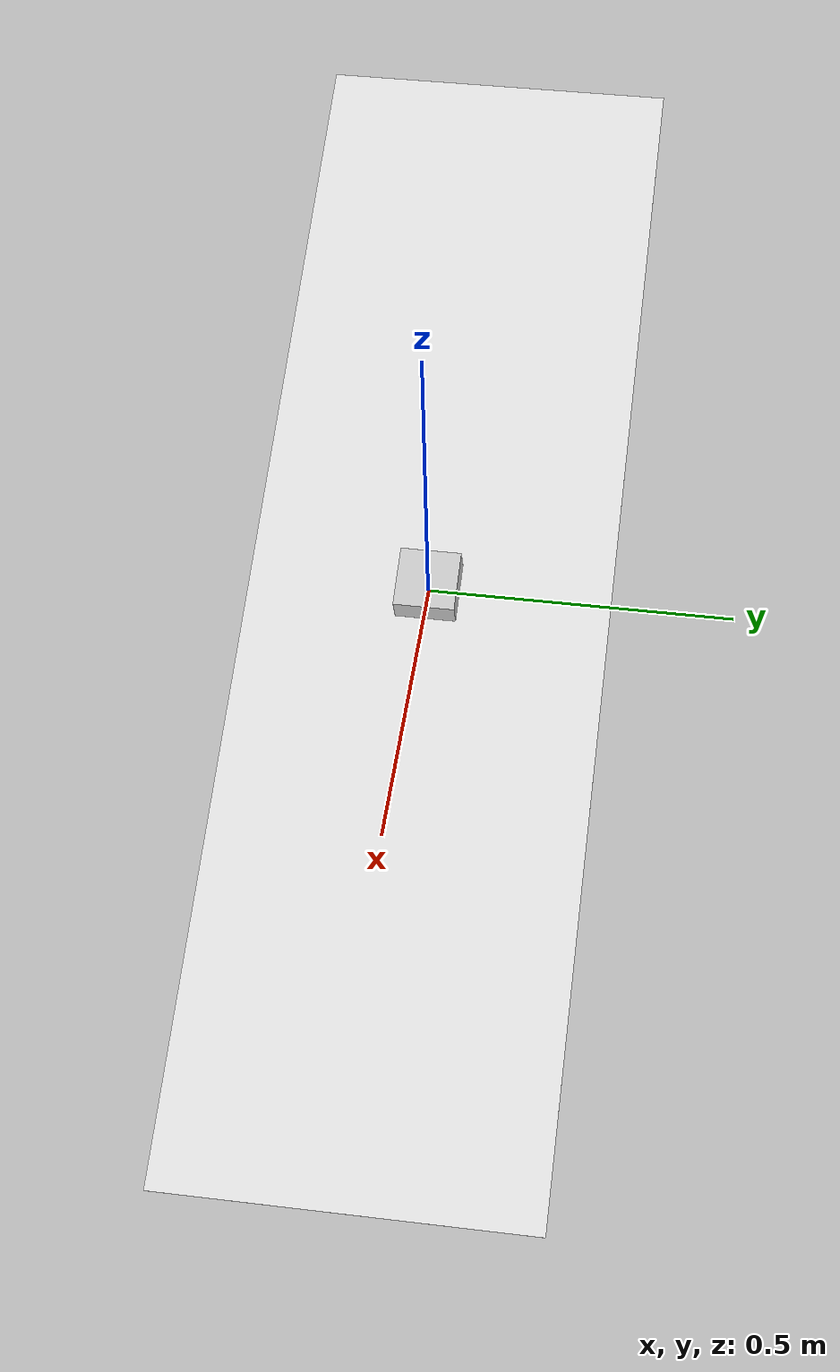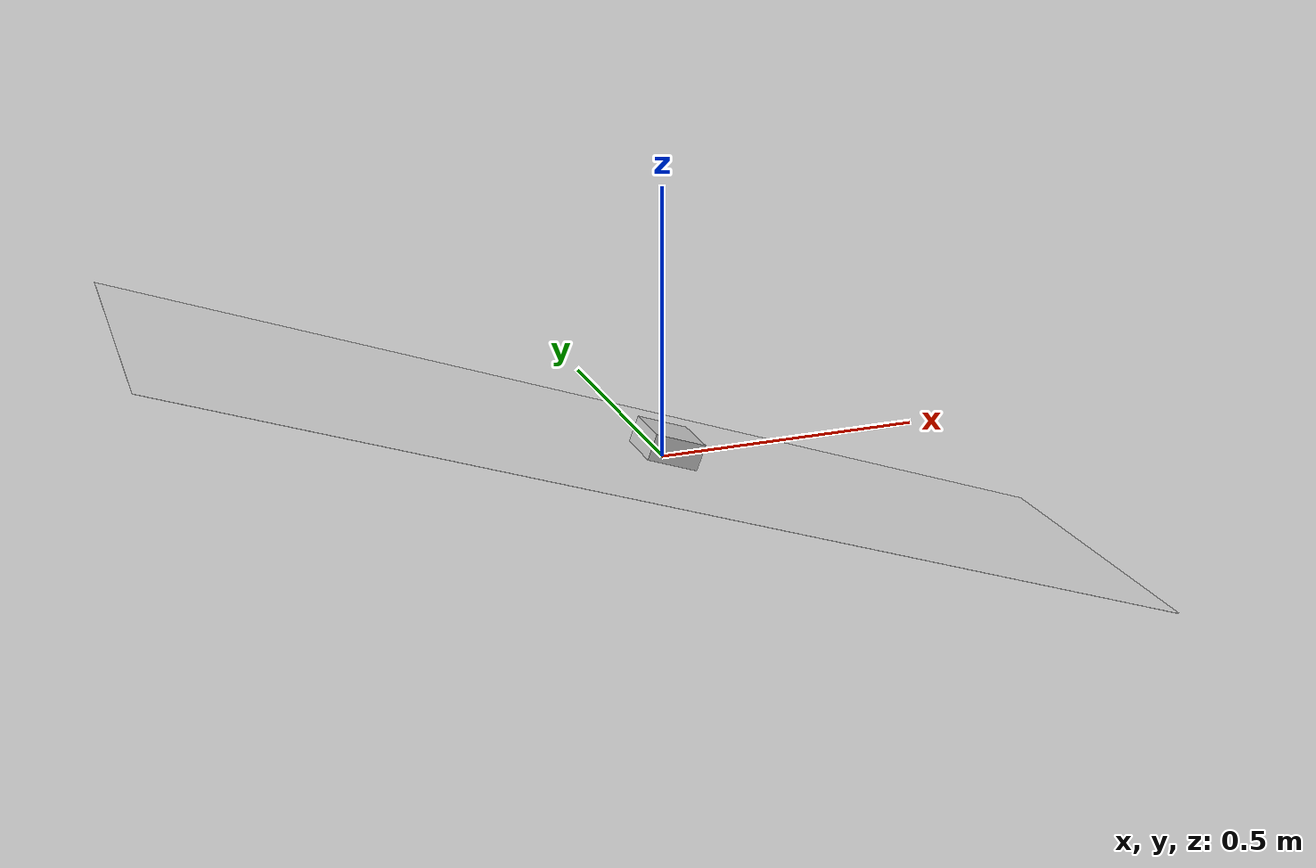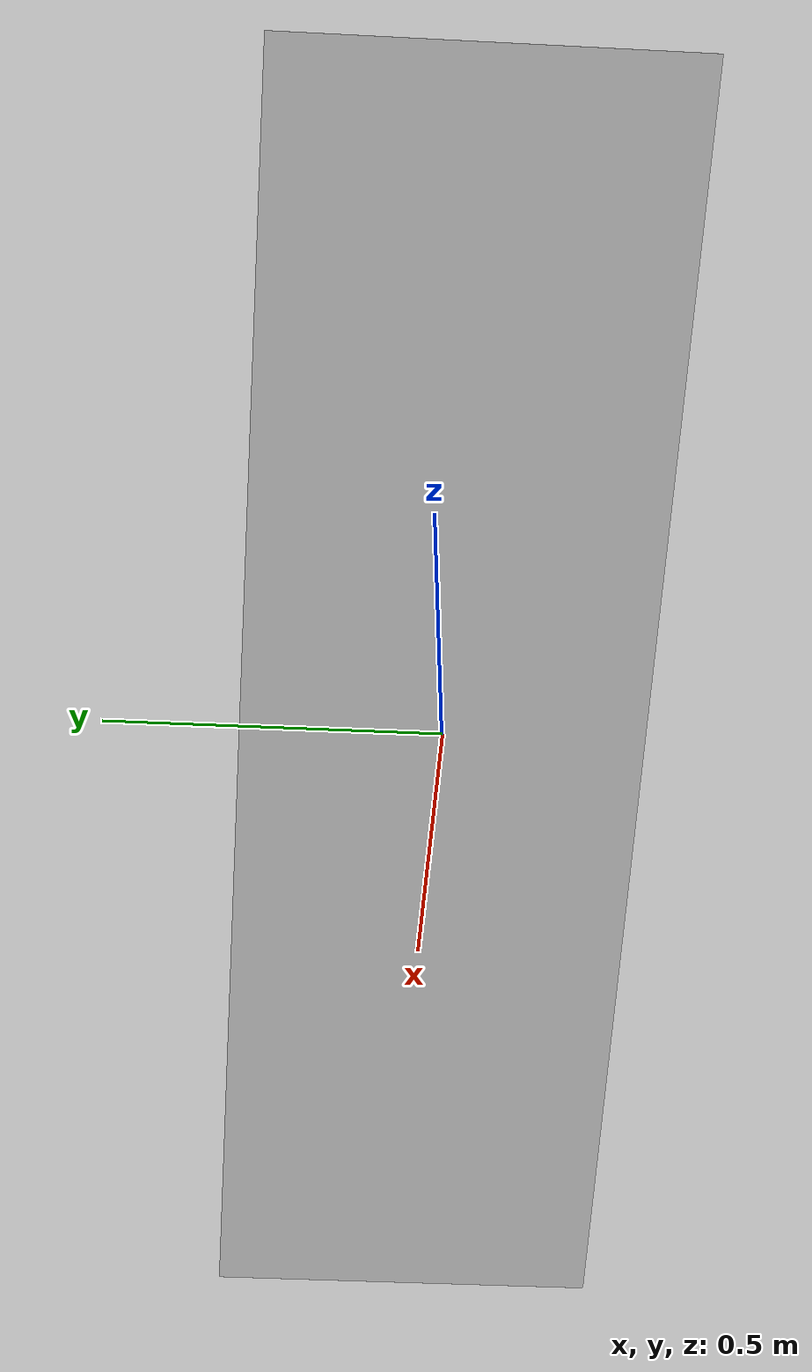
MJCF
<mujoco model="tilted_plane">
  <option timestep="0.002" gravity="0 0 -9.81"/>

  <worldbody>
    <!-- 2 m long (local x), 0.6 m wide; drawn with a 0.05 m grid. -->
    <geom name="ramp" type="plane" size="1 0.3 0.05" euler="0 20 0" priority="1"
          friction="0.5 0.005 0.0001" rgba="0.9 0.9 0.9 1"/>

    <body name="block" pos="0.0085505 0 0.0234923" euler="0 20 0">
      <freejoint name="block"/>
      <!-- 0.1 m x 0.1 m footprint, 0.05 m tall, 1 kg. -->
      <geom name="block" type="box" size="0.05 0.05 0.025" mass="1" rgba="0.8 0.8 0.8 1"/>
    </body>
  </worldbody>
</mujoco>
